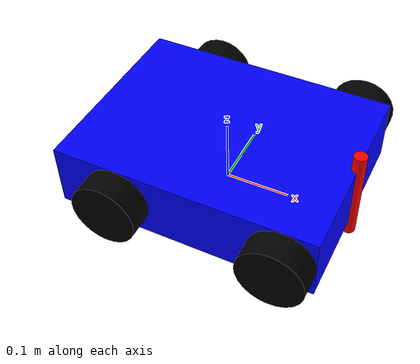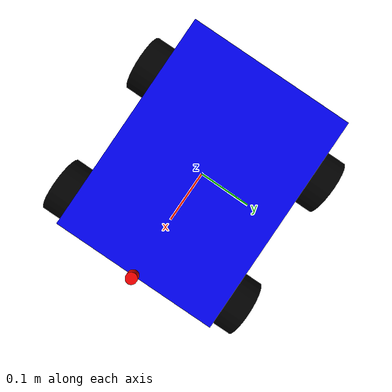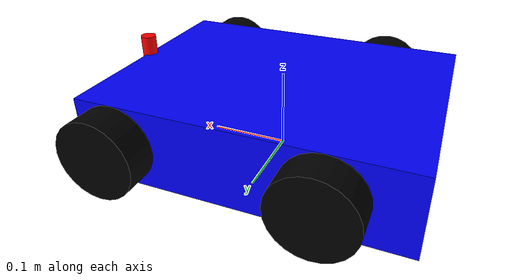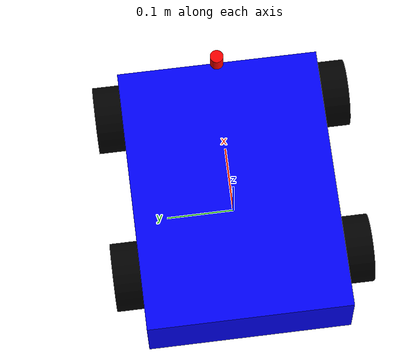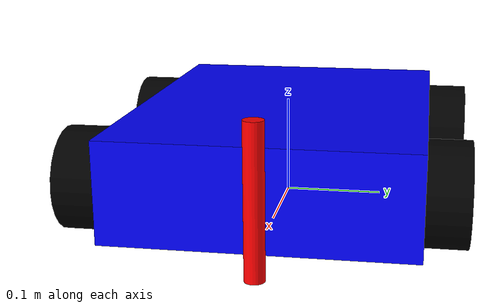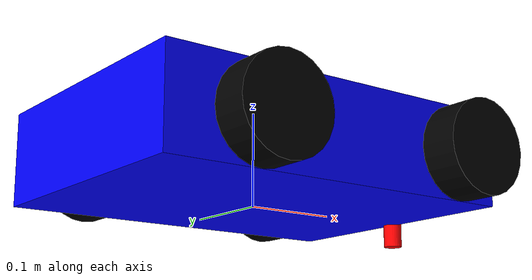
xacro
<?xml version="1.0"?>
<robot xmlns:xacro="http://www.ros.org/wiki/xacro" name="artbot">
  <xacro:arg name="ros2_control_yaml" default=""/>

  <link name="base_footprint"/>
  <joint name="base_footprint_joint" type="fixed">
    <parent link="base_footprint"/>
    <child link="base_link"/>
    <origin xyz="0 0 0.05" rpy="0 0 0"/>
  </joint>

  <link name="base_link">
    <visual>
      <geometry><box size="0.4 0.3 0.1"/></geometry>
      <material name="blue"><color rgba="0 0 1 1"/></material>
    </visual>
    <collision>
      <geometry><box size="0.4 0.3 0.1"/></geometry>
    </collision>
    <inertial>
      <mass value="2.0"/>
      <inertia ixx="0.1" ixy="0" ixz="0" iyy="0.1" iyz="0" izz="0.1"/>
    </inertial>
  </link>

  <link name="pen_link">
    <visual>
      <geometry><cylinder radius="0.01" length="0.15"/></geometry>
      <material name="red"><color rgba="1 0 0 1"/></material>
    </visual>
  </link>
  <joint name="pen_joint" type="fixed">
    <parent link="base_link"/>
    <child link="pen_link"/>
    <origin xyz="0.2 0 0" rpy="0 0 0"/>
  </joint>

  <xacro:macro name="wheel" params="name x_offset y_offset">
    <link name="${name}_wheel">
      <visual>
        <geometry><cylinder radius="0.05" length="0.04"/></geometry>
        <material name="black"><color rgba="0 0 0 1"/></material>
      </visual>
      <collision>
        <geometry><cylinder radius="0.05" length="0.04"/></geometry>
      </collision>
      <inertial>
        <mass value="0.2"/>
        <inertia ixx="0.005" ixy="0" ixz="0" iyy="0.005" iyz="0" izz="0.005"/>
      </inertial>
    </link>
    <joint name="${name}_wheel_joint" type="continuous">
      <parent link="base_link"/>
      <child link="${name}_wheel"/>
      <origin xyz="${x_offset} ${y_offset} 0" rpy="${pi/2} 0 0"/>
      <axis xyz="0 0 -1"/>
    </joint>
    <gazebo reference="${name}_wheel">
      <mu1>100.0</mu1>
      <mu2>100.0</mu2>
      <kp>10000000.0</kp>
      <kd>1.0</kd>
      <material>Gazebo/Black</material>
    </gazebo>
  </xacro:macro>

  <xacro:wheel name="left"        x_offset="-0.1"  y_offset="0.17"/>
  <xacro:wheel name="right"       x_offset="-0.1"  y_offset="-0.17"/>
  <xacro:wheel name="front_left"  x_offset="0.15"  y_offset="0.17"/>
  <xacro:wheel name="front_right" x_offset="0.15"  y_offset="-0.17"/>

  <gazebo reference="base_link">
    <material>Gazebo/Blue</material>
  </gazebo>
  <gazebo reference="pen_link">
    <material>Gazebo/Red</material>
  </gazebo>

  <ros2_control name="GazeboSystem" type="system">
    <hardware>
      <plugin>gz_ros2_control/GazeboSimSystem</plugin>
    </hardware>

    <joint name="left_wheel_joint">
      <command_interface name="velocity">
        <param name="min">-20</param>
        <param name="max">20</param>
      </command_interface>
      <state_interface name="velocity"/>
      <state_interface name="position"/>
    </joint>
    <joint name="right_wheel_joint">
      <command_interface name="velocity">
        <param name="min">-20</param>
        <param name="max">20</param>
      </command_interface>
      <state_interface name="velocity"/>
      <state_interface name="position"/>
    </joint>

    <joint name="front_left_wheel_joint">
      <command_interface name="velocity">
        <param name="min">-20</param>
        <param name="max">20</param>
      </command_interface>
      <state_interface name="velocity"/>
      <state_interface name="position"/>
    </joint>
    <joint name="front_right_wheel_joint">
      <command_interface name="velocity">
        <param name="min">-20</param>
        <param name="max">20</param>
      </command_interface>
      <state_interface name="velocity"/>
      <state_interface name="position"/>
    </joint>
  </ros2_control>

  <gazebo>
    <plugin filename="gz_ros2_control-system" name="gz_ros2_control::GazeboSimROS2ControlPlugin">
      <parameters>$(arg ros2_control_yaml)</parameters>
    </plugin>
  </gazebo>
  <gazebo>
    <plugin filename="gz-sim-odometry-publisher-system"
            name="gz::sim::systems::OdometryPublisher">
      <odom_frame>odom</odom_frame>
      <robot_base_frame>base_footprint</robot_base_frame>
      <dimensions>3</dimensions>
    </plugin>
  </gazebo>
  <gazebo reference="front_left_wheel">
    <mu1>0.0</mu1>
    <mu2>0.0</mu2>
  </gazebo>

  <gazebo reference="front_right_wheel">
    <mu1>0.0</mu1>
    <mu2>0.0</mu2>
  </gazebo>
</robot>
